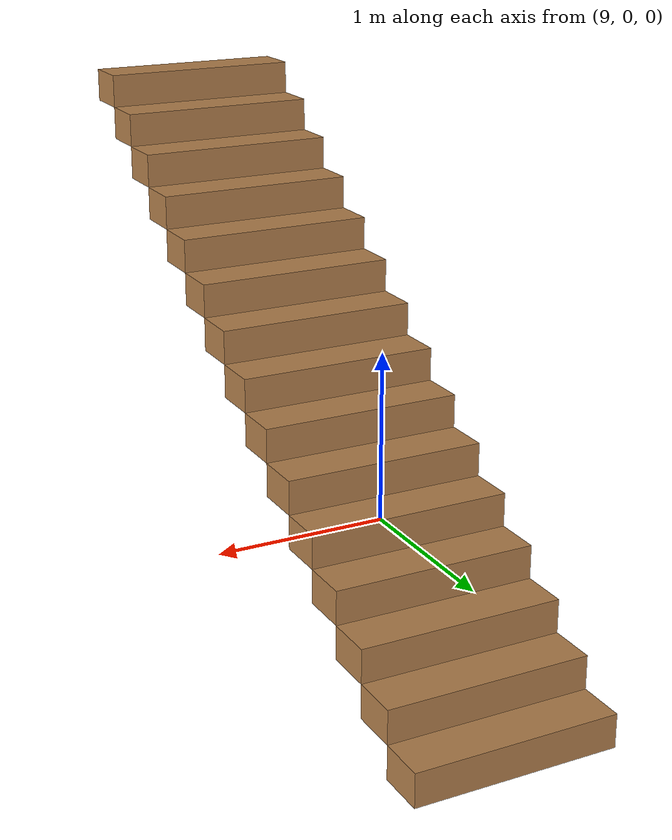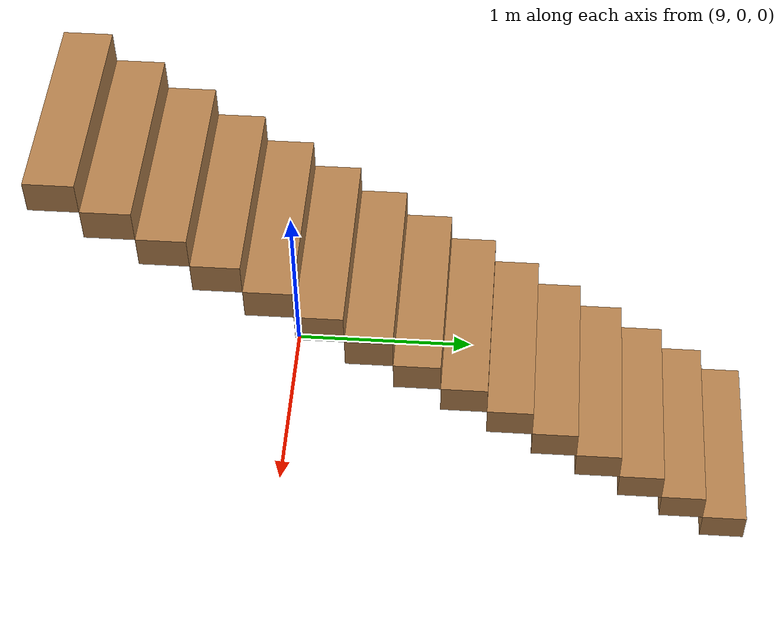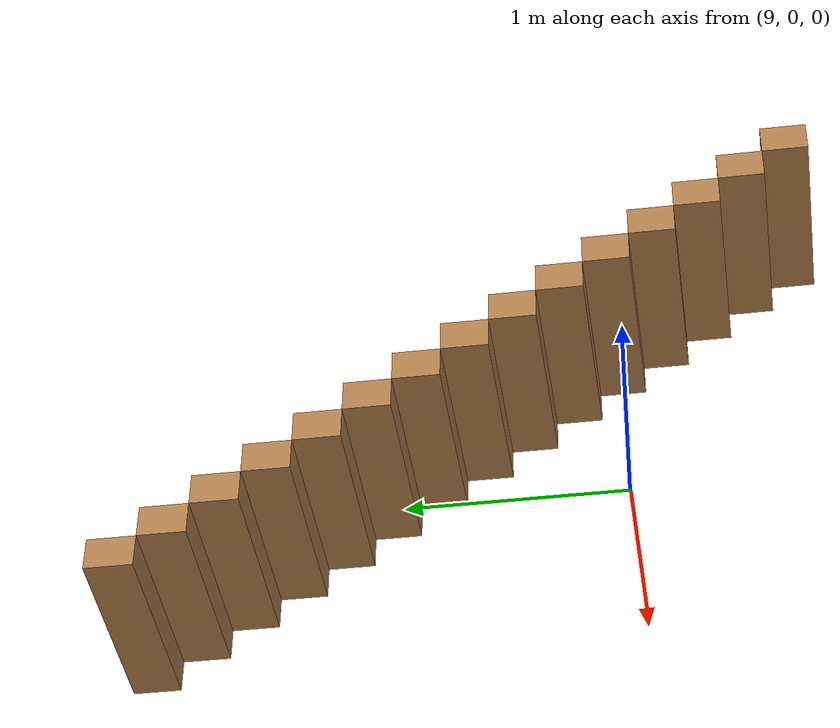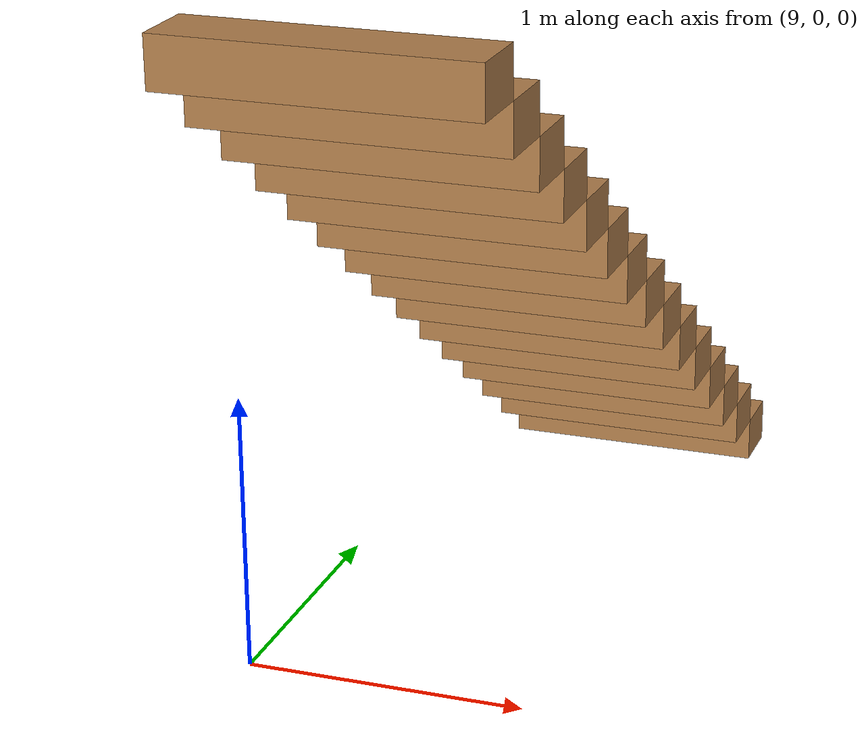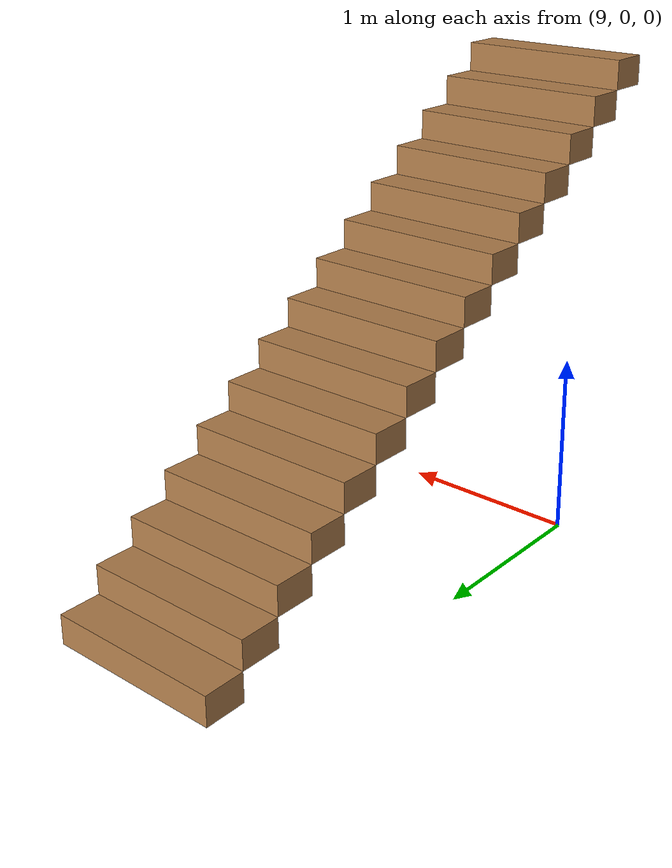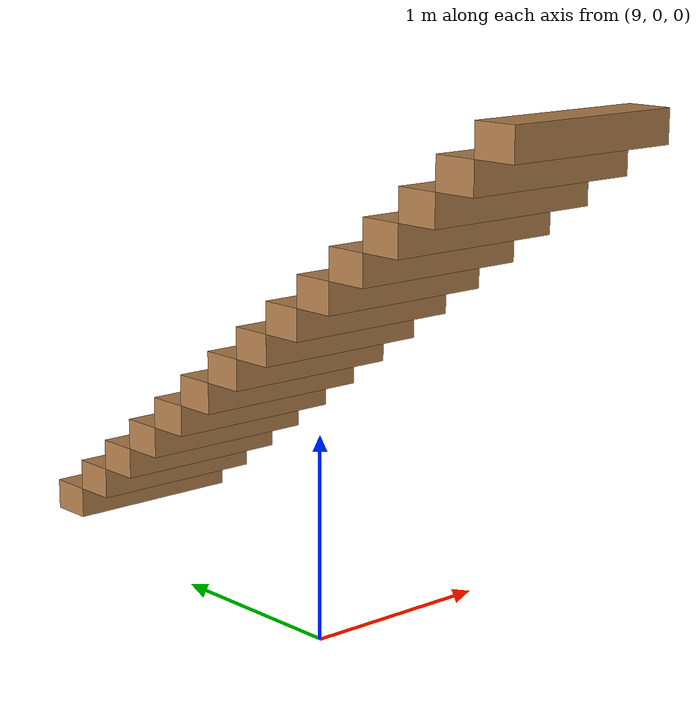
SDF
<?xml version="1.0" ?>
<sdf version="1.7">
  <model name="Stairs">
    <link name='Stairs_0'>
      <visual name='Stairs_0_Visual_0'>
        <pose>9.72126 2.40649 0.083333 0 -0 0</pose>
        <geometry>
          <box>
            <size>1 0.233333 0.166667</size>
          </box>
        </geometry>
        <material>
          <script>
            <uri>file://media/materials/scripts/gazebo.material</uri>
            <name>Gazebo/Wood</name>
          </script>
          <ambient>1 1 1 1</ambient>
        </material>
        <meta>
          <layer>0</layer>
        </meta>
      </visual>
      <collision name='Stairs_0_Collision_0'>
        <geometry>
          <box>
            <size>1 0.233333 0.166667</size>
          </box>
        </geometry>
        <pose>9.72126 2.40649 0.083333 0 -0 0</pose>
      </collision>
      <visual name='Stairs_0_Visual_1'>
        <pose>9.72126 2.17315 0.25 0 -0 0</pose>
        <geometry>
          <box>
            <size>1 0.233333 0.166667</size>
          </box>
        </geometry>
        <material>
          <script>
            <uri>file://media/materials/scripts/gazebo.material</uri>
            <name>Gazebo/Wood</name>
          </script>
          <ambient>1 1 1 1</ambient>
        </material>
        <meta>
          <layer>0</layer>
        </meta>
      </visual>
      <collision name='Stairs_0_Collision_1'>
        <geometry>
          <box>
            <size>1 0.233333 0.166667</size>
          </box>
        </geometry>
        <pose>9.72126 2.17315 0.25 0 -0 0</pose>
      </collision>
      <visual name='Stairs_0_Visual_2'>
        <pose>9.72126 1.93982 0.416667 0 -0 0</pose>
        <geometry>
          <box>
            <size>1 0.233333 0.166667</size>
          </box>
        </geometry>
        <material>
          <script>
            <uri>file://media/materials/scripts/gazebo.material</uri>
            <name>Gazebo/Wood</name>
          </script>
          <ambient>1 1 1 1</ambient>
        </material>
        <meta>
          <layer>0</layer>
        </meta>
      </visual>
      <collision name='Stairs_0_Collision_2'>
        <geometry>
          <box>
            <size>1 0.233333 0.166667</size>
          </box>
        </geometry>
        <pose>9.72126 1.93982 0.416667 0 -0 0</pose>
      </collision>
      <visual name='Stairs_0_Visual_3'>
        <pose>9.72126 1.70649 0.583333 0 -0 0</pose>
        <geometry>
          <box>
            <size>1 0.233333 0.166667</size>
          </box>
        </geometry>
        <material>
          <script>
            <uri>file://media/materials/scripts/gazebo.material</uri>
            <name>Gazebo/Wood</name>
          </script>
          <ambient>1 1 1 1</ambient>
        </material>
        <meta>
          <layer>0</layer>
        </meta>
      </visual>
      <collision name='Stairs_0_Collision_3'>
        <geometry>
          <box>
            <size>1 0.233333 0.166667</size>
          </box>
        </geometry>
        <pose>9.72126 1.70649 0.583333 0 -0 0</pose>
      </collision>
      <visual name='Stairs_0_Visual_4'>
        <pose>9.72126 1.47315 0.75 0 -0 0</pose>
        <geometry>
          <box>
            <size>1 0.233333 0.166667</size>
          </box>
        </geometry>
        <material>
          <script>
            <uri>file://media/materials/scripts/gazebo.material</uri>
            <name>Gazebo/Wood</name>
          </script>
          <ambient>1 1 1 1</ambient>
        </material>
        <meta>
          <layer>0</layer>
        </meta>
      </visual>
      <collision name='Stairs_0_Collision_4'>
        <geometry>
          <box>
            <size>1 0.233333 0.166667</size>
          </box>
        </geometry>
        <pose>9.72126 1.47315 0.75 0 -0 0</pose>
      </collision>
      <visual name='Stairs_0_Visual_5'>
        <pose>9.72126 1.23982 0.916667 0 -0 0</pose>
        <geometry>
          <box>
            <size>1 0.233333 0.166667</size>
          </box>
        </geometry>
        <material>
          <script>
            <uri>file://media/materials/scripts/gazebo.material</uri>
            <name>Gazebo/Wood</name>
          </script>
          <ambient>1 1 1 1</ambient>
        </material>
        <meta>
          <layer>0</layer>
        </meta>
      </visual>
      <collision name='Stairs_0_Collision_5'>
        <geometry>
          <box>
            <size>1 0.233333 0.166667</size>
          </box>
        </geometry>
        <pose>9.72126 1.23982 0.916667 0 -0 0</pose>
      </collision>
      <visual name='Stairs_0_Visual_6'>
        <pose>9.72126 1.00649 1.08333 0 -0 0</pose>
        <geometry>
          <box>
            <size>1 0.233333 0.166667</size>
          </box>
        </geometry>
        <material>
          <script>
            <uri>file://media/materials/scripts/gazebo.material</uri>
            <name>Gazebo/Wood</name>
          </script>
          <ambient>1 1 1 1</ambient>
        </material>
        <meta>
          <layer>0</layer>
        </meta>
      </visual>
      <collision name='Stairs_0_Collision_6'>
        <geometry>
          <box>
            <size>1 0.233333 0.166667</size>
          </box>
        </geometry>
        <pose>9.72126 1.00649 1.08333 0 -0 0</pose>
      </collision>
      <visual name='Stairs_0_Visual_7'>
        <pose>9.72126 0.773153 1.25 0 -0 0</pose>
        <geometry>
          <box>
            <size>1 0.233333 0.166667</size>
          </box>
        </geometry>
        <material>
          <script>
            <uri>file://media/materials/scripts/gazebo.material</uri>
            <name>Gazebo/Wood</name>
          </script>
          <ambient>1 1 1 1</ambient>
        </material>
        <meta>
          <layer>0</layer>
        </meta>
      </visual>
      <collision name='Stairs_0_Collision_7'>
        <geometry>
          <box>
            <size>1 0.233333 0.166667</size>
          </box>
        </geometry>
        <pose>9.72126 0.773153 1.25 0 -0 0</pose>
      </collision>
      <visual name='Stairs_0_Visual_8'>
        <pose>9.72126 0.539819 1.41667 0 -0 0</pose>
        <geometry>
          <box>
            <size>1 0.233333 0.166667</size>
          </box>
        </geometry>
        <material>
          <script>
            <uri>file://media/materials/scripts/gazebo.material</uri>
            <name>Gazebo/Wood</name>
          </script>
          <ambient>1 1 1 1</ambient>
        </material>
        <meta>
          <layer>0</layer>
        </meta>
      </visual>
      <collision name='Stairs_0_Collision_8'>
        <geometry>
          <box>
            <size>1 0.233333 0.166667</size>
          </box>
        </geometry>
        <pose>9.72126 0.539819 1.41667 0 -0 0</pose>
      </collision>
      <visual name='Stairs_0_Visual_9'>
        <pose>9.72126 0.306486 1.58333 0 -0 0</pose>
        <geometry>
          <box>
            <size>1 0.233333 0.166667</size>
          </box>
        </geometry>
        <material>
          <script>
            <uri>file://media/materials/scripts/gazebo.material</uri>
            <name>Gazebo/Wood</name>
          </script>
          <ambient>1 1 1 1</ambient>
        </material>
        <meta>
          <layer>0</layer>
        </meta>
      </visual>
      <collision name='Stairs_0_Collision_9'>
        <geometry>
          <box>
            <size>1 0.233333 0.166667</size>
          </box>
        </geometry>
        <pose>9.72126 0.306486 1.58333 0 -0 0</pose>
      </collision>
      <visual name='Stairs_0_Visual_10'>
        <pose>9.72126 0.073153 1.75 0 -0 0</pose>
        <geometry>
          <box>
            <size>1 0.233333 0.166667</size>
          </box>
        </geometry>
        <material>
          <script>
            <uri>file://media/materials/scripts/gazebo.material</uri>
            <name>Gazebo/Wood</name>
          </script>
          <ambient>1 1 1 1</ambient>
        </material>
        <meta>
          <layer>0</layer>
        </meta>
      </visual>
      <collision name='Stairs_0_Collision_10'>
        <geometry>
          <box>
            <size>1 0.233333 0.166667</size>
          </box>
        </geometry>
        <pose>9.72126 0.073153 1.75 0 -0 0</pose>
      </collision>
      <visual name='Stairs_0_Visual_11'>
        <pose>9.72126 -0.160181 1.91667 0 -0 0</pose>
        <geometry>
          <box>
            <size>1 0.233333 0.166667</size>
          </box>
        </geometry>
        <material>
          <script>
            <uri>file://media/materials/scripts/gazebo.material</uri>
            <name>Gazebo/Wood</name>
          </script>
          <ambient>1 1 1 1</ambient>
        </material>
        <meta>
          <layer>0</layer>
        </meta>
      </visual>
      <collision name='Stairs_0_Collision_11'>
        <geometry>
          <box>
            <size>1 0.233333 0.166667</size>
          </box>
        </geometry>
        <pose>9.72126 -0.160181 1.91667 0 -0 0</pose>
      </collision>
      <visual name='Stairs_0_Visual_12'>
        <pose>9.72126 -0.393514 2.08333 0 -0 0</pose>
        <geometry>
          <box>
            <size>1 0.233333 0.166667</size>
          </box>
        </geometry>
        <material>
          <script>
            <uri>file://media/materials/scripts/gazebo.material</uri>
            <name>Gazebo/Wood</name>
          </script>
          <ambient>1 1 1 1</ambient>
        </material>
        <meta>
          <layer>0</layer>
        </meta>
      </visual>
      <collision name='Stairs_0_Collision_12'>
        <geometry>
          <box>
            <size>1 0.233333 0.166667</size>
          </box>
        </geometry>
        <pose>9.72126 -0.393514 2.08333 0 -0 0</pose>
      </collision>
      <visual name='Stairs_0_Visual_13'>
        <pose>9.72126 -0.626847 2.25 0 -0 0</pose>
        <geometry>
          <box>
            <size>1 0.233333 0.166667</size>
          </box>
        </geometry>
        <material>
          <script>
            <uri>file://media/materials/scripts/gazebo.material</uri>
            <name>Gazebo/Wood</name>
          </script>
          <ambient>1 1 1 1</ambient>
        </material>
        <meta>
          <layer>0</layer>
        </meta>
      </visual>
      <collision name='Stairs_0_Collision_13'>
        <geometry>
          <box>
            <size>1 0.233333 0.166667</size>
          </box>
        </geometry>
        <pose>9.72126 -0.626847 2.25 0 -0 0</pose>
      </collision>
      <visual name='Stairs_0_Visual_14'>
        <pose>9.72126 -0.860181 2.41667 0 -0 0</pose>
        <geometry>
          <box>
            <size>1 0.233333 0.166667</size>
          </box>
        </geometry>
        <material>
          <script>
            <uri>file://media/materials/scripts/gazebo.material</uri>
            <name>Gazebo/Wood</name>
          </script>
          <ambient>1 1 1 1</ambient>
        </material>
        <meta>
          <layer>0</layer>
        </meta>
      </visual>
      <collision name='Stairs_0_Collision_14'>
        <geometry>
          <box>
            <size>1 0.233333 0.166667</size>
          </box>
        </geometry>
        <pose>9.72126 -0.860181 2.41667 0 -0 0</pose>
      </collision>
      </link>
    </model>
</sdf>
